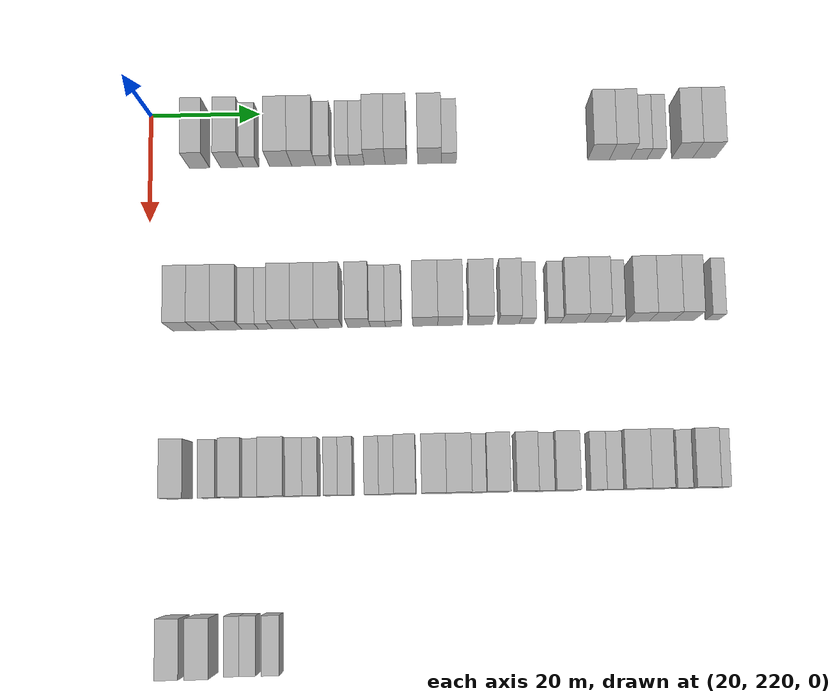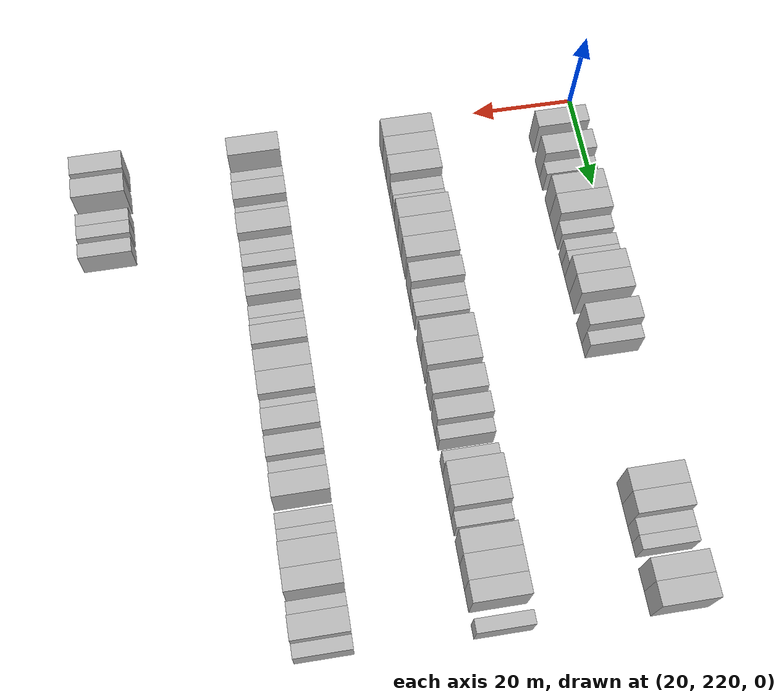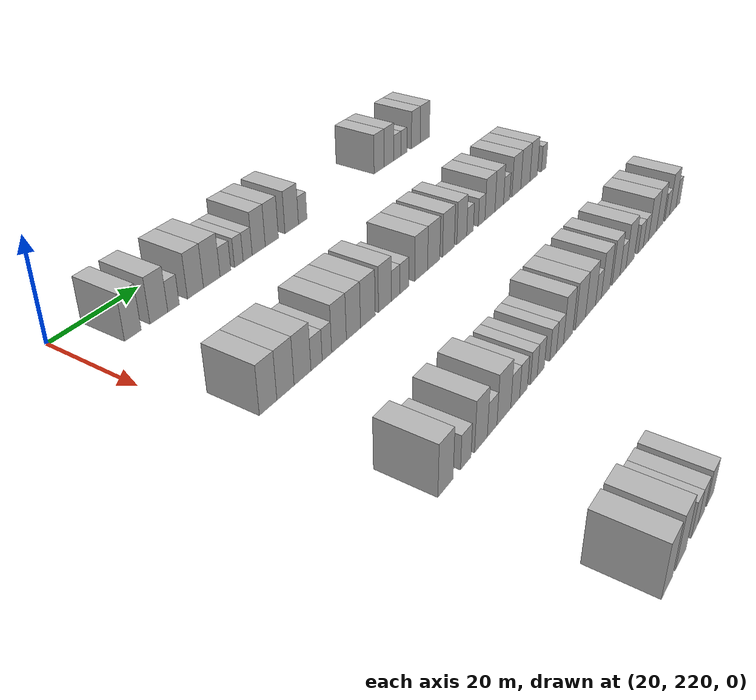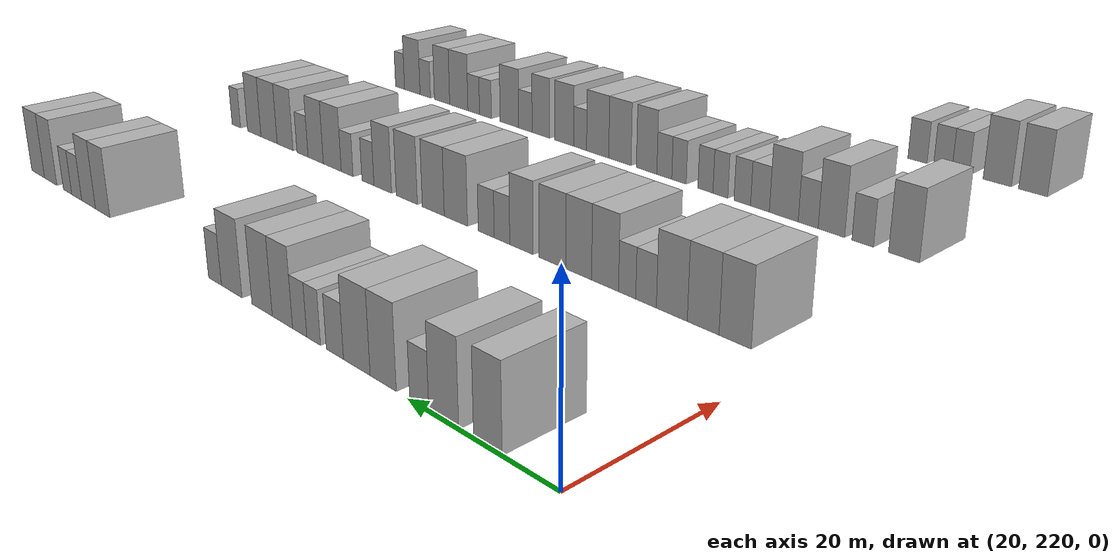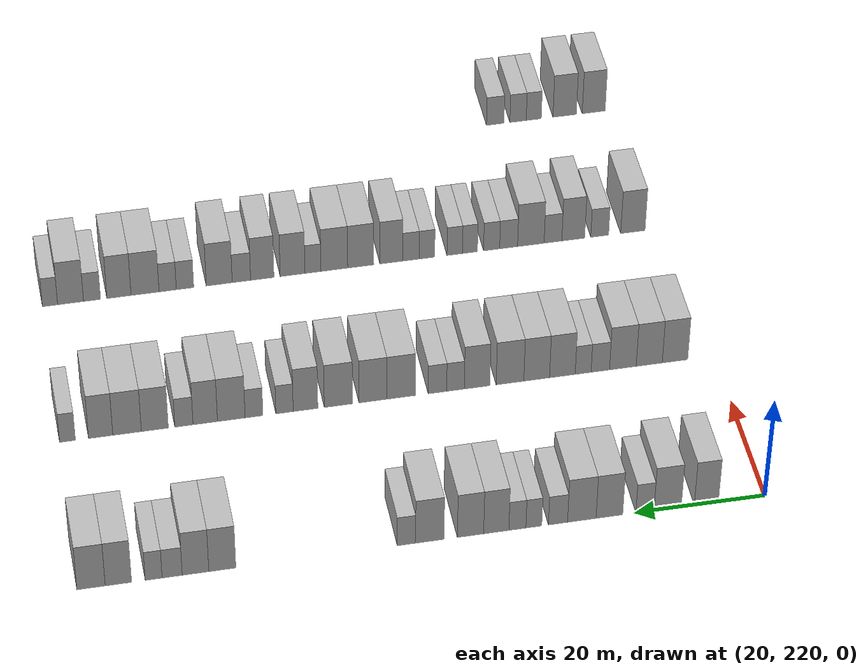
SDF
<sdf version="1.6">
 <world name="default">
  <model name="building_165">
   <static>1</static>
   <pose>25.0000 228.9589 0 0.000000 0.000000 0.000000</pose>
   <link name="link">
    <pose>0 0 4.50 0 0 0</pose>
    <collision name="collision"><geometry><box><size>10.0000 3.6870 9.0000</size></box></geometry></collision>
    <visual name="visual">
     <cast_shadows>0</cast_shadows>
     <geometry><box><size>10.0000 3.6870 9.0000</size></box></geometry>
     <material>
      <script>
       <uri>model://HANNAS_wall/materials/scripts</uri>
       <uri>model://HANNAS_wall/materials/textures</uri>
       <name>vrc/HANNAS_wall</name>
      </script>
     </material>
    </visual>
   </link>
  </model>
  <model name="building_166">
   <static>1</static>
   <pose>25.0000 234.8829 0 0.000000 0.000000 0.000000</pose>
   <link name="link">
    <pose>0 0 4.50 0 0 0</pose>
    <collision name="collision"><geometry><box><size>10.0000 4.1611 9.0000</size></box></geometry></collision>
    <visual name="visual">
     <cast_shadows>0</cast_shadows>
     <geometry><box><size>10.0000 4.1611 9.0000</size></box></geometry>
     <material>
      <script>
       <uri>model://HANNAS_wall/materials/scripts</uri>
       <uri>model://HANNAS_wall/materials/textures</uri>
       <name>vrc/HANNAS_wall</name>
      </script>
     </material>
    </visual>
   </link>
  </model>
  <model name="building_167">
   <static>1</static>
   <pose>25.0000 238.3476 0 0.000000 0.000000 0.000000</pose>
   <link name="link">
    <pose>0 0 3.00 0 0 0</pose>
    <collision name="collision"><geometry><box><size>10.0000 2.7683 6.0000</size></box></geometry></collision>
    <visual name="visual">
     <cast_shadows>0</cast_shadows>
     <geometry><box><size>10.0000 2.7683 6.0000</size></box></geometry>
     <material>
      <script>
       <uri>model://HANNAS_wall/materials/scripts</uri>
       <uri>model://HANNAS_wall/materials/textures</uri>
       <name>vrc/HANNAS_wall</name>
      </script>
     </material>
    </visual>
   </link>
  </model>
  <model name="building_168">
   <static>1</static>
   <pose>25.0000 243.7575 0 0.000000 0.000000 0.000000</pose>
   <link name="link">
    <pose>0 0 4.50 0 0 0</pose>
    <collision name="collision"><geometry><box><size>10.0000 4.0513 9.0000</size></box></geometry></collision>
    <visual name="visual">
     <cast_shadows>0</cast_shadows>
     <geometry><box><size>10.0000 4.0513 9.0000</size></box></geometry>
     <material>
      <script>
       <uri>model://HANNAS_wall/materials/scripts</uri>
       <uri>model://HANNAS_wall/materials/textures</uri>
       <name>vrc/HANNAS_wall</name>
      </script>
     </material>
    </visual>
   </link>
  </model>
  <model name="building_169">
   <static>1</static>
   <pose>25.0000 247.9475 0 0.000000 0.000000 0.000000</pose>
   <link name="link">
    <pose>0 0 4.50 0 0 0</pose>
    <collision name="collision"><geometry><box><size>10.0000 4.3287 9.0000</size></box></geometry></collision>
    <visual name="visual">
     <cast_shadows>0</cast_shadows>
     <geometry><box><size>10.0000 4.3287 9.0000</size></box></geometry>
     <material>
      <script>
       <uri>model://HANNAS_wall/materials/scripts</uri>
       <uri>model://HANNAS_wall/materials/textures</uri>
       <name>vrc/HANNAS_wall</name>
      </script>
     </material>
    </visual>
   </link>
  </model>
  <model name="building_170">
   <static>1</static>
   <pose>25.0000 251.5617 0 0.000000 0.000000 0.000000</pose>
   <link name="link">
    <pose>0 0 3.00 0 0 0</pose>
    <collision name="collision"><geometry><box><size>10.0000 2.8998 6.0000</size></box></geometry></collision>
    <visual name="visual">
     <cast_shadows>0</cast_shadows>
     <geometry><box><size>10.0000 2.8998 6.0000</size></box></geometry>
     <material>
      <script>
       <uri>model://HANNAS_wall/materials/scripts</uri>
       <uri>model://HANNAS_wall/materials/textures</uri>
       <name>vrc/HANNAS_wall</name>
      </script>
     </material>
    </visual>
   </link>
  </model>
  <model name="building_171">
   <static>1</static>
   <pose>25.0000 255.2138 0 0.000000 0.000000 0.000000</pose>
   <link name="link">
    <pose>0 0 3.00 0 0 0</pose>
    <collision name="collision"><geometry><box><size>10.0000 2.4044 6.0000</size></box></geometry></collision>
    <visual name="visual">
     <cast_shadows>0</cast_shadows>
     <geometry><box><size>10.0000 2.4044 6.0000</size></box></geometry>
     <material>
      <script>
       <uri>model://HANNAS_wall/materials/scripts</uri>
       <uri>model://HANNAS_wall/materials/textures</uri>
       <name>vrc/HANNAS_wall</name>
      </script>
     </material>
    </visual>
   </link>
  </model>
  <model name="building_172">
   <static>1</static>
   <pose>25.0000 257.7016 0 0.000000 0.000000 0.000000</pose>
   <link name="link">
    <pose>0 0 3.00 0 0 0</pose>
    <collision name="collision"><geometry><box><size>10.0000 2.5711 6.0000</size></box></geometry></collision>
    <visual name="visual">
     <cast_shadows>0</cast_shadows>
     <geometry><box><size>10.0000 2.5711 6.0000</size></box></geometry>
     <material>
      <script>
       <uri>model://HANNAS_wall/materials/scripts</uri>
       <uri>model://HANNAS_wall/materials/textures</uri>
       <name>vrc/HANNAS_wall</name>
      </script>
     </material>
    </visual>
   </link>
  </model>
  <model name="building_173">
   <static>1</static>
   <pose>25.0000 260.8875 0 0.000000 0.000000 0.000000</pose>
   <link name="link">
    <pose>0 0 4.50 0 0 0</pose>
    <collision name="collision"><geometry><box><size>10.0000 3.8006 9.0000</size></box></geometry></collision>
    <visual name="visual">
     <cast_shadows>0</cast_shadows>
     <geometry><box><size>10.0000 3.8006 9.0000</size></box></geometry>
     <material>
      <script>
       <uri>model://HANNAS_wall/materials/scripts</uri>
       <uri>model://HANNAS_wall/materials/textures</uri>
       <name>vrc/HANNAS_wall</name>
      </script>
     </material>
    </visual>
   </link>
  </model>
  <model name="building_174">
   <static>1</static>
   <pose>25.0000 264.7633 0 0.000000 0.000000 0.000000</pose>
   <link name="link">
    <pose>0 0 4.50 0 0 0</pose>
    <collision name="collision"><geometry><box><size>10.0000 3.9510 9.0000</size></box></geometry></collision>
    <visual name="visual">
     <cast_shadows>0</cast_shadows>
     <geometry><box><size>10.0000 3.9510 9.0000</size></box></geometry>
     <material>
      <script>
       <uri>model://HANNAS_wall/materials/scripts</uri>
       <uri>model://HANNAS_wall/materials/textures</uri>
       <name>vrc/HANNAS_wall</name>
      </script>
     </material>
    </visual>
   </link>
  </model>
  <model name="building_175">
   <static>1</static>
   <pose>25.0000 270.8706 0 0.000000 0.000000 0.000000</pose>
   <link name="link">
    <pose>0 0 4.50 0 0 0</pose>
    <collision name="collision"><geometry><box><size>10.0000 4.2636 9.0000</size></box></geometry></collision>
    <visual name="visual">
     <cast_shadows>0</cast_shadows>
     <geometry><box><size>10.0000 4.2636 9.0000</size></box></geometry>
     <material>
      <script>
       <uri>model://HANNAS_wall/materials/scripts</uri>
       <uri>model://HANNAS_wall/materials/textures</uri>
       <name>vrc/HANNAS_wall</name>
      </script>
     </material>
    </visual>
   </link>
  </model>
  <model name="building_176">
   <static>1</static>
   <pose>25.0000 274.3729 0 0.000000 0.000000 0.000000</pose>
   <link name="link">
    <pose>0 0 3.00 0 0 0</pose>
    <collision name="collision"><geometry><box><size>10.0000 2.7410 6.0000</size></box></geometry></collision>
    <visual name="visual">
     <cast_shadows>0</cast_shadows>
     <geometry><box><size>10.0000 2.7410 6.0000</size></box></geometry>
     <material>
      <script>
       <uri>model://HANNAS_wall/materials/scripts</uri>
       <uri>model://HANNAS_wall/materials/textures</uri>
       <name>vrc/HANNAS_wall</name>
      </script>
     </material>
    </visual>
   </link>
  </model>
  <model name="building_177">
   <static>1</static>
   <pose>25.0000 301.7185 0 0.000000 0.000000 0.000000</pose>
   <link name="link">
    <pose>0 0 4.50 0 0 0</pose>
    <collision name="collision"><geometry><box><size>10.0000 3.9834 9.0000</size></box></geometry></collision>
    <visual name="visual">
     <cast_shadows>0</cast_shadows>
     <geometry><box><size>10.0000 3.9834 9.0000</size></box></geometry>
     <material>
      <script>
       <uri>model://HANNAS_wall/materials/scripts</uri>
       <uri>model://HANNAS_wall/materials/textures</uri>
       <name>vrc/HANNAS_wall</name>
      </script>
     </material>
    </visual>
   </link>
  </model>
  <model name="building_178">
   <static>1</static>
   <pose>25.0000 305.6666 0 0.000000 0.000000 0.000000</pose>
   <link name="link">
    <pose>0 0 4.50 0 0 0</pose>
    <collision name="collision"><geometry><box><size>10.0000 3.9129 9.0000</size></box></geometry></collision>
    <visual name="visual">
     <cast_shadows>0</cast_shadows>
     <geometry><box><size>10.0000 3.9129 9.0000</size></box></geometry>
     <material>
      <script>
       <uri>model://HANNAS_wall/materials/scripts</uri>
       <uri>model://HANNAS_wall/materials/textures</uri>
       <name>vrc/HANNAS_wall</name>
      </script>
     </material>
    </visual>
   </link>
  </model>
  <model name="building_179">
   <static>1</static>
   <pose>25.0000 309.0980 0 0.000000 0.000000 0.000000</pose>
   <link name="link">
    <pose>0 0 3.00 0 0 0</pose>
    <collision name="collision"><geometry><box><size>10.0000 2.9500 6.0000</size></box></geometry></collision>
    <visual name="visual">
     <cast_shadows>0</cast_shadows>
     <geometry><box><size>10.0000 2.9500 6.0000</size></box></geometry>
     <material>
      <script>
       <uri>model://HANNAS_wall/materials/scripts</uri>
       <uri>model://HANNAS_wall/materials/textures</uri>
       <name>vrc/HANNAS_wall</name>
      </script>
     </material>
    </visual>
   </link>
  </model>
  <model name="building_180">
   <static>1</static>
   <pose>25.0000 311.8156 0 0.000000 0.000000 0.000000</pose>
   <link name="link">
    <pose>0 0 3.00 0 0 0</pose>
    <collision name="collision"><geometry><box><size>10.0000 2.4853 6.0000</size></box></geometry></collision>
    <visual name="visual">
     <cast_shadows>0</cast_shadows>
     <geometry><box><size>10.0000 2.4853 6.0000</size></box></geometry>
     <material>
      <script>
       <uri>model://HANNAS_wall/materials/scripts</uri>
       <uri>model://HANNAS_wall/materials/textures</uri>
       <name>vrc/HANNAS_wall</name>
      </script>
     </material>
    </visual>
   </link>
  </model>
  <model name="building_181">
   <static>1</static>
   <pose>25.0000 316.9848 0 0.000000 0.000000 0.000000</pose>
   <link name="link">
    <pose>0 0 4.50 0 0 0</pose>
    <collision name="collision"><geometry><box><size>10.0000 3.8531 9.0000</size></box></geometry></collision>
    <visual name="visual">
     <cast_shadows>0</cast_shadows>
     <geometry><box><size>10.0000 3.8531 9.0000</size></box></geometry>
     <material>
      <script>
       <uri>model://HANNAS_wall/materials/scripts</uri>
       <uri>model://HANNAS_wall/materials/textures</uri>
       <name>vrc/HANNAS_wall</name>
      </script>
     </material>
    </visual>
   </link>
  </model>
  <model name="building_182">
   <static>1</static>
   <pose>25.0000 320.9832 0 0.000000 0.000000 0.000000</pose>
   <link name="link">
    <pose>0 0 4.50 0 0 0</pose>
    <collision name="collision"><geometry><box><size>10.0000 4.1437 9.0000</size></box></geometry></collision>
    <visual name="visual">
     <cast_shadows>0</cast_shadows>
     <geometry><box><size>10.0000 4.1437 9.0000</size></box></geometry>
     <material>
      <script>
       <uri>model://HANNAS_wall/materials/scripts</uri>
       <uri>model://HANNAS_wall/materials/textures</uri>
       <name>vrc/HANNAS_wall</name>
      </script>
     </material>
    </visual>
   </link>
  </model>
  <model name="building_401">
   <static>1</static>
   <pose>55.0000 226.3319 0 0.000000 0.000000 0.000000</pose>
   <link name="link">
    <pose>0 0 4.50 0 0 0</pose>
    <collision name="collision"><geometry><box><size>10.0000 4.0497 9.0000</size></box></geometry></collision>
    <visual name="visual">
     <cast_shadows>0</cast_shadows>
     <geometry><box><size>10.0000 4.0497 9.0000</size></box></geometry>
     <material>
      <script>
       <uri>model://HANNAS_wall/materials/scripts</uri>
       <uri>model://HANNAS_wall/materials/textures</uri>
       <name>vrc/HANNAS_wall</name>
      </script>
     </material>
    </visual>
   </link>
  </model>
  <model name="building_402">
   <static>1</static>
   <pose>55.0000 230.4317 0 0.000000 0.000000 0.000000</pose>
   <link name="link">
    <pose>0 0 4.50 0 0 0</pose>
    <collision name="collision"><geometry><box><size>10.0000 4.1498 9.0000</size></box></geometry></collision>
    <visual name="visual">
     <cast_shadows>0</cast_shadows>
     <geometry><box><size>10.0000 4.1498 9.0000</size></box></geometry>
     <material>
      <script>
       <uri>model://HANNAS_wall/materials/scripts</uri>
       <uri>model://HANNAS_wall/materials/textures</uri>
       <name>vrc/HANNAS_wall</name>
      </script>
     </material>
    </visual>
   </link>
  </model>
  <model name="building_403">
   <static>1</static>
   <pose>55.0000 234.6223 0 0.000000 0.000000 0.000000</pose>
   <link name="link">
    <pose>0 0 4.50 0 0 0</pose>
    <collision name="collision"><geometry><box><size>10.0000 4.2315 9.0000</size></box></geometry></collision>
    <visual name="visual">
     <cast_shadows>0</cast_shadows>
     <geometry><box><size>10.0000 4.2315 9.0000</size></box></geometry>
     <material>
      <script>
       <uri>model://HANNAS_wall/materials/scripts</uri>
       <uri>model://HANNAS_wall/materials/textures</uri>
       <name>vrc/HANNAS_wall</name>
      </script>
     </material>
    </visual>
   </link>
  </model>
  <model name="building_404">
   <static>1</static>
   <pose>55.0000 238.1984 0 0.000000 0.000000 0.000000</pose>
   <link name="link">
    <pose>0 0 3.00 0 0 0</pose>
    <collision name="collision"><geometry><box><size>10.0000 2.9206 6.0000</size></box></geometry></collision>
    <visual name="visual">
     <cast_shadows>0</cast_shadows>
     <geometry><box><size>10.0000 2.9206 6.0000</size></box></geometry>
     <material>
      <script>
       <uri>model://HANNAS_wall/materials/scripts</uri>
       <uri>model://HANNAS_wall/materials/textures</uri>
       <name>vrc/HANNAS_wall</name>
      </script>
     </material>
    </visual>
   </link>
  </model>
  <model name="building_405">
   <static>1</static>
   <pose>55.0000 240.9176 0 0.000000 0.000000 0.000000</pose>
   <link name="link">
    <pose>0 0 3.00 0 0 0</pose>
    <collision name="collision"><geometry><box><size>10.0000 2.5178 6.0000</size></box></geometry></collision>
    <visual name="visual">
     <cast_shadows>0</cast_shadows>
     <geometry><box><size>10.0000 2.5178 6.0000</size></box></geometry>
     <material>
      <script>
       <uri>model://HANNAS_wall/materials/scripts</uri>
       <uri>model://HANNAS_wall/materials/textures</uri>
       <name>vrc/HANNAS_wall</name>
      </script>
     </material>
    </visual>
   </link>
  </model>
  <model name="building_406">
   <static>1</static>
   <pose>55.0000 244.2061 0 0.000000 0.000000 0.000000</pose>
   <link name="link">
    <pose>0 0 4.50 0 0 0</pose>
    <collision name="collision"><geometry><box><size>10.0000 4.0594 9.0000</size></box></geometry></collision>
    <visual name="visual">
     <cast_shadows>0</cast_shadows>
     <geometry><box><size>10.0000 4.0594 9.0000</size></box></geometry>
     <material>
      <script>
       <uri>model://HANNAS_wall/materials/scripts</uri>
       <uri>model://HANNAS_wall/materials/textures</uri>
       <name>vrc/HANNAS_wall</name>
      </script>
     </material>
    </visual>
   </link>
  </model>
  <model name="building_407">
   <static>1</static>
   <pose>55.0000 248.2642 0 0.000000 0.000000 0.000000</pose>
   <link name="link">
    <pose>0 0 4.50 0 0 0</pose>
    <collision name="collision"><geometry><box><size>10.0000 4.0568 9.0000</size></box></geometry></collision>
    <visual name="visual">
     <cast_shadows>0</cast_shadows>
     <geometry><box><size>10.0000 4.0568 9.0000</size></box></geometry>
     <material>
      <script>
       <uri>model://HANNAS_wall/materials/scripts</uri>
       <uri>model://HANNAS_wall/materials/textures</uri>
       <name>vrc/HANNAS_wall</name>
      </script>
     </material>
    </visual>
   </link>
  </model>
  <model name="building_408">
   <static>1</static>
   <pose>55.0000 252.4696 0 0.000000 0.000000 0.000000</pose>
   <link name="link">
    <pose>0 0 4.50 0 0 0</pose>
    <collision name="collision"><geometry><box><size>10.0000 4.3540 9.0000</size></box></geometry></collision>
    <visual name="visual">
     <cast_shadows>0</cast_shadows>
     <geometry><box><size>10.0000 4.3540 9.0000</size></box></geometry>
     <material>
      <script>
       <uri>model://HANNAS_wall/materials/scripts</uri>
       <uri>model://HANNAS_wall/materials/textures</uri>
       <name>vrc/HANNAS_wall</name>
      </script>
     </material>
    </visual>
   </link>
  </model>
  <model name="building_409">
   <static>1</static>
   <pose>55.0000 257.6516 0 0.000000 0.000000 0.000000</pose>
   <link name="link">
    <pose>0 0 4.50 0 0 0</pose>
    <collision name="collision"><geometry><box><size>10.0000 4.0098 9.0000</size></box></geometry></collision>
    <visual name="visual">
     <cast_shadows>0</cast_shadows>
     <geometry><box><size>10.0000 4.0098 9.0000</size></box></geometry>
     <material>
      <script>
       <uri>model://HANNAS_wall/materials/scripts</uri>
       <uri>model://HANNAS_wall/materials/textures</uri>
       <name>vrc/HANNAS_wall</name>
      </script>
     </material>
    </visual>
   </link>
  </model>
  <model name="building_410">
   <static>1</static>
   <pose>55.0000 261.0306 0 0.000000 0.000000 0.000000</pose>
   <link name="link">
    <pose>0 0 3.00 0 0 0</pose>
    <collision name="collision"><geometry><box><size>10.0000 2.7482 6.0000</size></box></geometry></collision>
    <visual name="visual">
     <cast_shadows>0</cast_shadows>
     <geometry><box><size>10.0000 2.7482 6.0000</size></box></geometry>
     <material>
      <script>
       <uri>model://HANNAS_wall/materials/scripts</uri>
       <uri>model://HANNAS_wall/materials/textures</uri>
       <name>vrc/HANNAS_wall</name>
      </script>
     </material>
    </visual>
   </link>
  </model>
  <model name="building_411">
   <static>1</static>
   <pose>55.0000 263.8508 0 0.000000 0.000000 0.000000</pose>
   <link name="link">
    <pose>0 0 3.00 0 0 0</pose>
    <collision name="collision"><geometry><box><size>10.0000 2.8924 6.0000</size></box></geometry></collision>
    <visual name="visual">
     <cast_shadows>0</cast_shadows>
     <geometry><box><size>10.0000 2.8924 6.0000</size></box></geometry>
     <material>
      <script>
       <uri>model://HANNAS_wall/materials/scripts</uri>
       <uri>model://HANNAS_wall/materials/textures</uri>
       <name>vrc/HANNAS_wall</name>
      </script>
     </material>
    </visual>
   </link>
  </model>
  <model name="building_412">
   <static>1</static>
   <pose>55.0000 269.5129 0 0.000000 0.000000 0.000000</pose>
   <link name="link">
    <pose>0 0 4.50 0 0 0</pose>
    <collision name="collision"><geometry><box><size>10.0000 4.4317 9.0000</size></box></geometry></collision>
    <visual name="visual">
     <cast_shadows>0</cast_shadows>
     <geometry><box><size>10.0000 4.4317 9.0000</size></box></geometry>
     <material>
      <script>
       <uri>model://HANNAS_wall/materials/scripts</uri>
       <uri>model://HANNAS_wall/materials/textures</uri>
       <name>vrc/HANNAS_wall</name>
      </script>
     </material>
    </visual>
   </link>
  </model>
  <model name="building_413">
   <static>1</static>
   <pose>55.0000 273.9113 0 0.000000 0.000000 0.000000</pose>
   <link name="link">
    <pose>0 0 4.50 0 0 0</pose>
    <collision name="collision"><geometry><box><size>10.0000 4.3653 9.0000</size></box></geometry></collision>
    <visual name="visual">
     <cast_shadows>0</cast_shadows>
     <geometry><box><size>10.0000 4.3653 9.0000</size></box></geometry>
     <material>
      <script>
       <uri>model://HANNAS_wall/materials/scripts</uri>
       <uri>model://HANNAS_wall/materials/textures</uri>
       <name>vrc/HANNAS_wall</name>
      </script>
     </material>
    </visual>
   </link>
  </model>
  <model name="building_414">
   <static>1</static>
   <pose>55.0000 279.2862 0 0.000000 0.000000 0.000000</pose>
   <link name="link">
    <pose>0 0 4.50 0 0 0</pose>
    <collision name="collision"><geometry><box><size>10.0000 4.3844 9.0000</size></box></geometry></collision>
    <visual name="visual">
     <cast_shadows>0</cast_shadows>
     <geometry><box><size>10.0000 4.3844 9.0000</size></box></geometry>
     <material>
      <script>
       <uri>model://HANNAS_wall/materials/scripts</uri>
       <uri>model://HANNAS_wall/materials/textures</uri>
       <name>vrc/HANNAS_wall</name>
      </script>
     </material>
    </visual>
   </link>
  </model>
  <model name="building_415">
   <static>1</static>
   <pose>55.0000 284.3878 0 0.000000 0.000000 0.000000</pose>
   <link name="link">
    <pose>0 0 4.50 0 0 0</pose>
    <collision name="collision"><geometry><box><size>10.0000 3.8189 9.0000</size></box></geometry></collision>
    <visual name="visual">
     <cast_shadows>0</cast_shadows>
     <geometry><box><size>10.0000 3.8189 9.0000</size></box></geometry>
     <material>
      <script>
       <uri>model://HANNAS_wall/materials/scripts</uri>
       <uri>model://HANNAS_wall/materials/textures</uri>
       <name>vrc/HANNAS_wall</name>
      </script>
     </material>
    </visual>
   </link>
  </model>
  <model name="building_416">
   <static>1</static>
   <pose>55.0000 287.6374 0 0.000000 0.000000 0.000000</pose>
   <link name="link">
    <pose>0 0 3.00 0 0 0</pose>
    <collision name="collision"><geometry><box><size>10.0000 2.6803 6.0000</size></box></geometry></collision>
    <visual name="visual">
     <cast_shadows>0</cast_shadows>
     <geometry><box><size>10.0000 2.6803 6.0000</size></box></geometry>
     <material>
      <script>
       <uri>model://HANNAS_wall/materials/scripts</uri>
       <uri>model://HANNAS_wall/materials/textures</uri>
       <name>vrc/HANNAS_wall</name>
      </script>
     </material>
    </visual>
   </link>
  </model>
  <model name="building_417">
   <static>1</static>
   <pose>55.0000 292.3520 0 0.000000 0.000000 0.000000</pose>
   <link name="link">
    <pose>0 0 3.00 0 0 0</pose>
    <collision name="collision"><geometry><box><size>10.0000 2.7490 6.0000</size></box></geometry></collision>
    <visual name="visual">
     <cast_shadows>0</cast_shadows>
     <geometry><box><size>10.0000 2.7490 6.0000</size></box></geometry>
     <material>
      <script>
       <uri>model://HANNAS_wall/materials/scripts</uri>
       <uri>model://HANNAS_wall/materials/textures</uri>
       <name>vrc/HANNAS_wall</name>
      </script>
     </material>
    </visual>
   </link>
  </model>
  <model name="building_418">
   <static>1</static>
   <pose>55.0000 295.8548 0 0.000000 0.000000 0.000000</pose>
   <link name="link">
    <pose>0 0 4.50 0 0 0</pose>
    <collision name="collision"><geometry><box><size>10.0000 4.2565 9.0000</size></box></geometry></collision>
    <visual name="visual">
     <cast_shadows>0</cast_shadows>
     <geometry><box><size>10.0000 4.2565 9.0000</size></box></geometry>
     <material>
      <script>
       <uri>model://HANNAS_wall/materials/scripts</uri>
       <uri>model://HANNAS_wall/materials/textures</uri>
       <name>vrc/HANNAS_wall</name>
      </script>
     </material>
    </visual>
   </link>
  </model>
  <model name="building_419">
   <static>1</static>
   <pose>55.0000 299.8618 0 0.000000 0.000000 0.000000</pose>
   <link name="link">
    <pose>0 0 4.50 0 0 0</pose>
    <collision name="collision"><geometry><box><size>10.0000 3.7575 9.0000</size></box></geometry></collision>
    <visual name="visual">
     <cast_shadows>0</cast_shadows>
     <geometry><box><size>10.0000 3.7575 9.0000</size></box></geometry>
     <material>
      <script>
       <uri>model://HANNAS_wall/materials/scripts</uri>
       <uri>model://HANNAS_wall/materials/textures</uri>
       <name>vrc/HANNAS_wall</name>
      </script>
     </material>
    </visual>
   </link>
  </model>
  <model name="building_420">
   <static>1</static>
   <pose>55.0000 303.1364 0 0.000000 0.000000 0.000000</pose>
   <link name="link">
    <pose>0 0 3.00 0 0 0</pose>
    <collision name="collision"><geometry><box><size>10.0000 2.7918 6.0000</size></box></geometry></collision>
    <visual name="visual">
     <cast_shadows>0</cast_shadows>
     <geometry><box><size>10.0000 2.7918 6.0000</size></box></geometry>
     <material>
      <script>
       <uri>model://HANNAS_wall/materials/scripts</uri>
       <uri>model://HANNAS_wall/materials/textures</uri>
       <name>vrc/HANNAS_wall</name>
      </script>
     </material>
    </visual>
   </link>
  </model>
  <model name="building_421">
   <static>1</static>
   <pose>55.0000 307.5966 0 0.000000 0.000000 0.000000</pose>
   <link name="link">
    <pose>0 0 4.50 0 0 0</pose>
    <collision name="collision"><geometry><box><size>10.0000 4.1285 9.0000</size></box></geometry></collision>
    <visual name="visual">
     <cast_shadows>0</cast_shadows>
     <geometry><box><size>10.0000 4.1285 9.0000</size></box></geometry>
     <material>
      <script>
       <uri>model://HANNAS_wall/materials/scripts</uri>
       <uri>model://HANNAS_wall/materials/textures</uri>
       <name>vrc/HANNAS_wall</name>
      </script>
     </material>
    </visual>
   </link>
  </model>
  <model name="building_422">
   <static>1</static>
   <pose>55.0000 311.8406 0 0.000000 0.000000 0.000000</pose>
   <link name="link">
    <pose>0 0 4.50 0 0 0</pose>
    <collision name="collision"><geometry><box><size>10.0000 4.3596 9.0000</size></box></geometry></collision>
    <visual name="visual">
     <cast_shadows>0</cast_shadows>
     <geometry><box><size>10.0000 4.3596 9.0000</size></box></geometry>
     <material>
      <script>
       <uri>model://HANNAS_wall/materials/scripts</uri>
       <uri>model://HANNAS_wall/materials/textures</uri>
       <name>vrc/HANNAS_wall</name>
      </script>
     </material>
    </visual>
   </link>
  </model>
  <model name="building_423">
   <static>1</static>
   <pose>55.0000 315.8719 0 0.000000 0.000000 0.000000</pose>
   <link name="link">
    <pose>0 0 4.50 0 0 0</pose>
    <collision name="collision"><geometry><box><size>10.0000 3.7029 9.0000</size></box></geometry></collision>
    <visual name="visual">
     <cast_shadows>0</cast_shadows>
     <geometry><box><size>10.0000 3.7029 9.0000</size></box></geometry>
     <material>
      <script>
       <uri>model://HANNAS_wall/materials/scripts</uri>
       <uri>model://HANNAS_wall/materials/textures</uri>
       <name>vrc/HANNAS_wall</name>
      </script>
     </material>
    </visual>
   </link>
  </model>
  <model name="building_424">
   <static>1</static>
   <pose>55.0000 320.9282 0 0.000000 0.000000 0.000000</pose>
   <link name="link">
    <pose>0 0 3.00 0 0 0</pose>
    <collision name="collision"><geometry><box><size>10.0000 2.4098 6.0000</size></box></geometry></collision>
    <visual name="visual">
     <cast_shadows>0</cast_shadows>
     <geometry><box><size>10.0000 2.4098 6.0000</size></box></geometry>
     <material>
      <script>
       <uri>model://HANNAS_wall/materials/scripts</uri>
       <uri>model://HANNAS_wall/materials/textures</uri>
       <name>vrc/HANNAS_wall</name>
      </script>
     </material>
    </visual>
   </link>
  </model>
  <model name="building_635">
   <static>1</static>
   <pose>85.0000 225.8785 0 0.000000 0.000000 0.000000</pose>
   <link name="link">
    <pose>0 0 4.50 0 0 0</pose>
    <collision name="collision"><geometry><box><size>10.0000 4.0204 9.0000</size></box></geometry></collision>
    <visual name="visual">
     <cast_shadows>0</cast_shadows>
     <geometry><box><size>10.0000 4.0204 9.0000</size></box></geometry>
     <material>
      <script>
       <uri>model://HANNAS_wall/materials/scripts</uri>
       <uri>model://HANNAS_wall/materials/textures</uri>
       <name>vrc/HANNAS_wall</name>
      </script>
     </material>
    </visual>
   </link>
  </model>
  <model name="building_636">
   <static>1</static>
   <pose>85.0000 231.3619 0 0.000000 0.000000 0.000000</pose>
   <link name="link">
    <pose>0 0 3.00 0 0 0</pose>
    <collision name="collision"><geometry><box><size>10.0000 2.9464 6.0000</size></box></geometry></collision>
    <visual name="visual">
     <cast_shadows>0</cast_shadows>
     <geometry><box><size>10.0000 2.9464 6.0000</size></box></geometry>
     <material>
      <script>
       <uri>model://HANNAS_wall/materials/scripts</uri>
       <uri>model://HANNAS_wall/materials/textures</uri>
       <name>vrc/HANNAS_wall</name>
      </script>
     </material>
    </visual>
   </link>
  </model>
  <model name="building_637">
   <static>1</static>
   <pose>85.0000 235.7194 0 0.000000 0.000000 0.000000</pose>
   <link name="link">
    <pose>0 0 4.50 0 0 0</pose>
    <collision name="collision"><geometry><box><size>10.0000 3.7686 9.0000</size></box></geometry></collision>
    <visual name="visual">
     <cast_shadows>0</cast_shadows>
     <geometry><box><size>10.0000 3.7686 9.0000</size></box></geometry>
     <material>
      <script>
       <uri>model://HANNAS_wall/materials/scripts</uri>
       <uri>model://HANNAS_wall/materials/textures</uri>
       <name>vrc/HANNAS_wall</name>
      </script>
     </material>
    </visual>
   </link>
  </model>
  <model name="building_638">
   <static>1</static>
   <pose>85.0000 239.0615 0 0.000000 0.000000 0.000000</pose>
   <link name="link">
    <pose>0 0 3.00 0 0 0</pose>
    <collision name="collision"><geometry><box><size>10.0000 2.9155 6.0000</size></box></geometry></collision>
    <visual name="visual">
     <cast_shadows>0</cast_shadows>
     <geometry><box><size>10.0000 2.9155 6.0000</size></box></geometry>
     <material>
      <script>
       <uri>model://HANNAS_wall/materials/scripts</uri>
       <uri>model://HANNAS_wall/materials/textures</uri>
       <name>vrc/HANNAS_wall</name>
      </script>
     </material>
    </visual>
   </link>
  </model>
  <model name="building_639">
   <static>1</static>
   <pose>85.0000 242.6972 0 0.000000 0.000000 0.000000</pose>
   <link name="link">
    <pose>0 0 4.50 0 0 0</pose>
    <collision name="collision"><geometry><box><size>10.0000 4.3559 9.0000</size></box></geometry></collision>
    <visual name="visual">
     <cast_shadows>0</cast_shadows>
     <geometry><box><size>10.0000 4.3559 9.0000</size></box></geometry>
     <material>
      <script>
       <uri>model://HANNAS_wall/materials/scripts</uri>
       <uri>model://HANNAS_wall/materials/textures</uri>
       <name>vrc/HANNAS_wall</name>
      </script>
     </material>
    </visual>
   </link>
  </model>
  <model name="building_640">
   <static>1</static>
   <pose>85.0000 246.3415 0 0.000000 0.000000 0.000000</pose>
   <link name="link">
    <pose>0 0 3.00 0 0 0</pose>
    <collision name="collision"><geometry><box><size>10.0000 2.9327 6.0000</size></box></geometry></collision>
    <visual name="visual">
     <cast_shadows>0</cast_shadows>
     <geometry><box><size>10.0000 2.9327 6.0000</size></box></geometry>
     <material>
      <script>
       <uri>model://HANNAS_wall/materials/scripts</uri>
       <uri>model://HANNAS_wall/materials/textures</uri>
       <name>vrc/HANNAS_wall</name>
      </script>
     </material>
    </visual>
   </link>
  </model>
  <model name="building_641">
   <static>1</static>
   <pose>85.0000 249.1278 0 0.000000 0.000000 0.000000</pose>
   <link name="link">
    <pose>0 0 3.00 0 0 0</pose>
    <collision name="collision"><geometry><box><size>10.0000 2.6401 6.0000</size></box></geometry></collision>
    <visual name="visual">
     <cast_shadows>0</cast_shadows>
     <geometry><box><size>10.0000 2.6401 6.0000</size></box></geometry>
     <material>
      <script>
       <uri>model://HANNAS_wall/materials/scripts</uri>
       <uri>model://HANNAS_wall/materials/textures</uri>
       <name>vrc/HANNAS_wall</name>
      </script>
     </material>
    </visual>
   </link>
  </model>
  <model name="building_642">
   <static>1</static>
   <pose>85.0000 252.6709 0 0.000000 0.000000 0.000000</pose>
   <link name="link">
    <pose>0 0 3.00 0 0 0</pose>
    <collision name="collision"><geometry><box><size>10.0000 2.4461 6.0000</size></box></geometry></collision>
    <visual name="visual">
     <cast_shadows>0</cast_shadows>
     <geometry><box><size>10.0000 2.4461 6.0000</size></box></geometry>
     <material>
      <script>
       <uri>model://HANNAS_wall/materials/scripts</uri>
       <uri>model://HANNAS_wall/materials/textures</uri>
       <name>vrc/HANNAS_wall</name>
      </script>
     </material>
    </visual>
   </link>
  </model>
  <model name="building_643">
   <static>1</static>
   <pose>85.0000 255.1575 0 0.000000 0.000000 0.000000</pose>
   <link name="link">
    <pose>0 0 3.00 0 0 0</pose>
    <collision name="collision"><geometry><box><size>10.0000 2.5270 6.0000</size></box></geometry></collision>
    <visual name="visual">
     <cast_shadows>0</cast_shadows>
     <geometry><box><size>10.0000 2.5270 6.0000</size></box></geometry>
     <material>
      <script>
       <uri>model://HANNAS_wall/materials/scripts</uri>
       <uri>model://HANNAS_wall/materials/textures</uri>
       <name>vrc/HANNAS_wall</name>
      </script>
     </material>
    </visual>
   </link>
  </model>
  <model name="building_644">
   <static>1</static>
   <pose>85.0000 259.6769 0 0.000000 0.000000 0.000000</pose>
   <link name="link">
    <pose>0 0 3.00 0 0 0</pose>
    <collision name="collision"><geometry><box><size>10.0000 2.5118 6.0000</size></box></geometry></collision>
    <visual name="visual">
     <cast_shadows>0</cast_shadows>
     <geometry><box><size>10.0000 2.5118 6.0000</size></box></geometry>
     <material>
      <script>
       <uri>model://HANNAS_wall/materials/scripts</uri>
       <uri>model://HANNAS_wall/materials/textures</uri>
       <name>vrc/HANNAS_wall</name>
      </script>
     </material>
    </visual>
   </link>
  </model>
  <model name="building_645">
   <static>1</static>
   <pose>85.0000 262.2652 0 0.000000 0.000000 0.000000</pose>
   <link name="link">
    <pose>0 0 3.00 0 0 0</pose>
    <collision name="collision"><geometry><box><size>10.0000 2.6647 6.0000</size></box></geometry></collision>
    <visual name="visual">
     <cast_shadows>0</cast_shadows>
     <geometry><box><size>10.0000 2.6647 6.0000</size></box></geometry>
     <material>
      <script>
       <uri>model://HANNAS_wall/materials/scripts</uri>
       <uri>model://HANNAS_wall/materials/textures</uri>
       <name>vrc/HANNAS_wall</name>
      </script>
     </material>
    </visual>
   </link>
  </model>
  <model name="building_646">
   <static>1</static>
   <pose>85.0000 265.4618 0 0.000000 0.000000 0.000000</pose>
   <link name="link">
    <pose>0 0 4.50 0 0 0</pose>
    <collision name="collision"><geometry><box><size>10.0000 3.7286 9.0000</size></box></geometry></collision>
    <visual name="visual">
     <cast_shadows>0</cast_shadows>
     <geometry><box><size>10.0000 3.7286 9.0000</size></box></geometry>
     <material>
      <script>
       <uri>model://HANNAS_wall/materials/scripts</uri>
       <uri>model://HANNAS_wall/materials/textures</uri>
       <name>vrc/HANNAS_wall</name>
      </script>
     </material>
    </visual>
   </link>
  </model>
  <model name="building_647">
   <static>1</static>
   <pose>85.0000 270.4392 0 0.000000 0.000000 0.000000</pose>
   <link name="link">
    <pose>0 0 4.50 0 0 0</pose>
    <collision name="collision"><geometry><box><size>10.0000 4.2262 9.0000</size></box></geometry></collision>
    <visual name="visual">
     <cast_shadows>0</cast_shadows>
     <geometry><box><size>10.0000 4.2262 9.0000</size></box></geometry>
     <material>
      <script>
       <uri>model://HANNAS_wall/materials/scripts</uri>
       <uri>model://HANNAS_wall/materials/textures</uri>
       <name>vrc/HANNAS_wall</name>
      </script>
     </material>
    </visual>
   </link>
  </model>
  <model name="building_648">
   <static>1</static>
   <pose>85.0000 274.7210 0 0.000000 0.000000 0.000000</pose>
   <link name="link">
    <pose>0 0 4.50 0 0 0</pose>
    <collision name="collision"><geometry><box><size>10.0000 4.3374 9.0000</size></box></geometry></collision>
    <visual name="visual">
     <cast_shadows>0</cast_shadows>
     <geometry><box><size>10.0000 4.3374 9.0000</size></box></geometry>
     <material>
      <script>
       <uri>model://HANNAS_wall/materials/scripts</uri>
       <uri>model://HANNAS_wall/materials/textures</uri>
       <name>vrc/HANNAS_wall</name>
      </script>
     </material>
    </visual>
   </link>
  </model>
  <model name="building_649">
   <static>1</static>
   <pose>85.0000 278.1732 0 0.000000 0.000000 0.000000</pose>
   <link name="link">
    <pose>0 0 3.00 0 0 0</pose>
    <collision name="collision"><geometry><box><size>10.0000 2.5669 6.0000</size></box></geometry></collision>
    <visual name="visual">
     <cast_shadows>0</cast_shadows>
     <geometry><box><size>10.0000 2.5669 6.0000</size></box></geometry>
     <material>
      <script>
       <uri>model://HANNAS_wall/materials/scripts</uri>
       <uri>model://HANNAS_wall/materials/textures</uri>
       <name>vrc/HANNAS_wall</name>
      </script>
     </material>
    </visual>
   </link>
  </model>
  <model name="building_650">
   <static>1</static>
   <pose>85.0000 281.4570 0 0.000000 0.000000 0.000000</pose>
   <link name="link">
    <pose>0 0 4.50 0 0 0</pose>
    <collision name="collision"><geometry><box><size>10.0000 4.0008 9.0000</size></box></geometry></collision>
    <visual name="visual">
     <cast_shadows>0</cast_shadows>
     <geometry><box><size>10.0000 4.0008 9.0000</size></box></geometry>
     <material>
      <script>
       <uri>model://HANNAS_wall/materials/scripts</uri>
       <uri>model://HANNAS_wall/materials/textures</uri>
       <name>vrc/HANNAS_wall</name>
      </script>
     </material>
    </visual>
   </link>
  </model>
  <model name="building_651">
   <static>1</static>
   <pose>85.0000 286.3367 0 0.000000 0.000000 0.000000</pose>
   <link name="link">
    <pose>0 0 4.50 0 0 0</pose>
    <collision name="collision"><geometry><box><size>10.0000 3.7586 9.0000</size></box></geometry></collision>
    <visual name="visual">
     <cast_shadows>0</cast_shadows>
     <geometry><box><size>10.0000 3.7586 9.0000</size></box></geometry>
     <material>
      <script>
       <uri>model://HANNAS_wall/materials/scripts</uri>
       <uri>model://HANNAS_wall/materials/textures</uri>
       <name>vrc/HANNAS_wall</name>
      </script>
     </material>
    </visual>
   </link>
  </model>
  <model name="building_652">
   <static>1</static>
   <pose>85.0000 289.6931 0 0.000000 0.000000 0.000000</pose>
   <link name="link">
    <pose>0 0 3.00 0 0 0</pose>
    <collision name="collision"><geometry><box><size>10.0000 2.9542 6.0000</size></box></geometry></collision>
    <visual name="visual">
     <cast_shadows>0</cast_shadows>
     <geometry><box><size>10.0000 2.9542 6.0000</size></box></geometry>
     <material>
      <script>
       <uri>model://HANNAS_wall/materials/scripts</uri>
       <uri>model://HANNAS_wall/materials/textures</uri>
       <name>vrc/HANNAS_wall</name>
      </script>
     </material>
    </visual>
   </link>
  </model>
  <model name="building_653">
   <static>1</static>
   <pose>85.0000 293.2513 0 0.000000 0.000000 0.000000</pose>
   <link name="link">
    <pose>0 0 4.50 0 0 0</pose>
    <collision name="collision"><geometry><box><size>10.0000 4.1622 9.0000</size></box></geometry></collision>
    <visual name="visual">
     <cast_shadows>0</cast_shadows>
     <geometry><box><size>10.0000 4.1622 9.0000</size></box></geometry>
     <material>
      <script>
       <uri>model://HANNAS_wall/materials/scripts</uri>
       <uri>model://HANNAS_wall/materials/textures</uri>
       <name>vrc/HANNAS_wall</name>
      </script>
     </material>
    </visual>
   </link>
  </model>
  <model name="building_654">
   <static>1</static>
   <pose>85.0000 298.7258 0 0.000000 0.000000 0.000000</pose>
   <link name="link">
    <pose>0 0 3.00 0 0 0</pose>
    <collision name="collision"><geometry><box><size>10.0000 2.7869 6.0000</size></box></geometry></collision>
    <visual name="visual">
     <cast_shadows>0</cast_shadows>
     <geometry><box><size>10.0000 2.7869 6.0000</size></box></geometry>
     <material>
      <script>
       <uri>model://HANNAS_wall/materials/scripts</uri>
       <uri>model://HANNAS_wall/materials/textures</uri>
       <name>vrc/HANNAS_wall</name>
      </script>
     </material>
    </visual>
   </link>
  </model>
  <model name="building_655">
   <static>1</static>
   <pose>85.0000 301.4985 0 0.000000 0.000000 0.000000</pose>
   <link name="link">
    <pose>0 0 3.00 0 0 0</pose>
    <collision name="collision"><geometry><box><size>10.0000 2.7584 6.0000</size></box></geometry></collision>
    <visual name="visual">
     <cast_shadows>0</cast_shadows>
     <geometry><box><size>10.0000 2.7584 6.0000</size></box></geometry>
     <material>
      <script>
       <uri>model://HANNAS_wall/materials/scripts</uri>
       <uri>model://HANNAS_wall/materials/textures</uri>
       <name>vrc/HANNAS_wall</name>
      </script>
     </material>
    </visual>
   </link>
  </model>
  <model name="building_656">
   <static>1</static>
   <pose>85.0000 305.1079 0 0.000000 0.000000 0.000000</pose>
   <link name="link">
    <pose>0 0 4.50 0 0 0</pose>
    <collision name="collision"><geometry><box><size>10.0000 4.4605 9.0000</size></box></geometry></collision>
    <visual name="visual">
     <cast_shadows>0</cast_shadows>
     <geometry><box><size>10.0000 4.4605 9.0000</size></box></geometry>
     <material>
      <script>
       <uri>model://HANNAS_wall/materials/scripts</uri>
       <uri>model://HANNAS_wall/materials/textures</uri>
       <name>vrc/HANNAS_wall</name>
      </script>
     </material>
    </visual>
   </link>
  </model>
  <model name="building_657">
   <static>1</static>
   <pose>85.0000 309.2621 0 0.000000 0.000000 0.000000</pose>
   <link name="link">
    <pose>0 0 4.50 0 0 0</pose>
    <collision name="collision"><geometry><box><size>10.0000 3.8479 9.0000</size></box></geometry></collision>
    <visual name="visual">
     <cast_shadows>0</cast_shadows>
     <geometry><box><size>10.0000 3.8479 9.0000</size></box></geometry>
     <material>
      <script>
       <uri>model://HANNAS_wall/materials/scripts</uri>
       <uri>model://HANNAS_wall/materials/textures</uri>
       <name>vrc/HANNAS_wall</name>
      </script>
     </material>
    </visual>
   </link>
  </model>
  <model name="building_658">
   <static>1</static>
   <pose>85.0000 313.5381 0 0.000000 0.000000 0.000000</pose>
   <link name="link">
    <pose>0 0 3.00 0 0 0</pose>
    <collision name="collision"><geometry><box><size>10.0000 2.7040 6.0000</size></box></geometry></collision>
    <visual name="visual">
     <cast_shadows>0</cast_shadows>
     <geometry><box><size>10.0000 2.7040 6.0000</size></box></geometry>
     <material>
      <script>
       <uri>model://HANNAS_wall/materials/scripts</uri>
       <uri>model://HANNAS_wall/materials/textures</uri>
       <name>vrc/HANNAS_wall</name>
      </script>
     </material>
    </visual>
   </link>
  </model>
  <model name="building_659">
   <static>1</static>
   <pose>85.0000 316.9420 0 0.000000 0.000000 0.000000</pose>
   <link name="link">
    <pose>0 0 4.50 0 0 0</pose>
    <collision name="collision"><geometry><box><size>10.0000 4.1039 9.0000</size></box></geometry></collision>
    <visual name="visual">
     <cast_shadows>0</cast_shadows>
     <geometry><box><size>10.0000 4.1039 9.0000</size></box></geometry>
     <material>
      <script>
       <uri>model://HANNAS_wall/materials/scripts</uri>
       <uri>model://HANNAS_wall/materials/textures</uri>
       <name>vrc/HANNAS_wall</name>
      </script>
     </material>
    </visual>
   </link>
  </model>
  <model name="building_660">
   <static>1</static>
   <pose>85.0000 320.2024 0 0.000000 0.000000 0.000000</pose>
   <link name="link">
    <pose>0 0 3.00 0 0 0</pose>
    <collision name="collision"><geometry><box><size>10.0000 2.4170 6.0000</size></box></geometry></collision>
    <visual name="visual">
     <cast_shadows>0</cast_shadows>
     <geometry><box><size>10.0000 2.4170 6.0000</size></box></geometry>
     <material>
      <script>
       <uri>model://HANNAS_wall/materials/scripts</uri>
       <uri>model://HANNAS_wall/materials/textures</uri>
       <name>vrc/HANNAS_wall</name>
      </script>
     </material>
    </visual>
   </link>
  </model>
  <model name="building_863">
   <static>1</static>
   <pose>115.0000 225.4571 0 0.000000 0.000000 0.000000</pose>
   <link name="link">
    <pose>0 0 4.50 0 0 0</pose>
    <collision name="collision"><geometry><box><size>10.0000 3.9318 9.0000</size></box></geometry></collision>
    <visual name="visual">
     <cast_shadows>0</cast_shadows>
     <geometry><box><size>10.0000 3.9318 9.0000</size></box></geometry>
     <material>
      <script>
       <uri>model://HANNAS_wall/materials/scripts</uri>
       <uri>model://HANNAS_wall/materials/textures</uri>
       <name>vrc/HANNAS_wall</name>
      </script>
     </material>
    </visual>
   </link>
  </model>
  <model name="building_864">
   <static>1</static>
   <pose>115.0000 230.4278 0 0.000000 0.000000 0.000000</pose>
   <link name="link">
    <pose>0 0 4.50 0 0 0</pose>
    <collision name="collision"><geometry><box><size>10.0000 4.0096 9.0000</size></box></geometry></collision>
    <visual name="visual">
     <cast_shadows>0</cast_shadows>
     <geometry><box><size>10.0000 4.0096 9.0000</size></box></geometry>
     <material>
      <script>
       <uri>model://HANNAS_wall/materials/scripts</uri>
       <uri>model://HANNAS_wall/materials/textures</uri>
       <name>vrc/HANNAS_wall</name>
      </script>
     </material>
    </visual>
   </link>
  </model>
  <model name="building_865">
   <static>1</static>
   <pose>115.0000 235.7193 0 0.000000 0.000000 0.000000</pose>
   <link name="link">
    <pose>0 0 3.00 0 0 0</pose>
    <collision name="collision"><geometry><box><size>10.0000 2.5733 6.0000</size></box></geometry></collision>
    <visual name="visual">
     <cast_shadows>0</cast_shadows>
     <geometry><box><size>10.0000 2.5733 6.0000</size></box></geometry>
     <material>
      <script>
       <uri>model://HANNAS_wall/materials/scripts</uri>
       <uri>model://HANNAS_wall/materials/textures</uri>
       <name>vrc/HANNAS_wall</name>
      </script>
     </material>
    </visual>
   </link>
  </model>
  <model name="building_866">
   <static>1</static>
   <pose>115.0000 238.4006 0 0.000000 0.000000 0.000000</pose>
   <link name="link">
    <pose>0 0 3.00 0 0 0</pose>
    <collision name="collision"><geometry><box><size>10.0000 2.7893 6.0000</size></box></geometry></collision>
    <visual name="visual">
     <cast_shadows>0</cast_shadows>
     <geometry><box><size>10.0000 2.7893 6.0000</size></box></geometry>
     <material>
      <script>
       <uri>model://HANNAS_wall/materials/scripts</uri>
       <uri>model://HANNAS_wall/materials/textures</uri>
       <name>vrc/HANNAS_wall</name>
      </script>
     </material>
    </visual>
   </link>
  </model>
  <model name="building_867">
   <static>1</static>
   <pose>115.0000 242.2874 0 0.000000 0.000000 0.000000</pose>
   <link name="link">
    <pose>0 0 3.00 0 0 0</pose>
    <collision name="collision"><geometry><box><size>10.0000 2.9842 6.0000</size></box></geometry></collision>
    <visual name="visual">
     <cast_shadows>0</cast_shadows>
     <geometry><box><size>10.0000 2.9842 6.0000</size></box></geometry>
     <material>
      <script>
       <uri>model://HANNAS_wall/materials/scripts</uri>
       <uri>model://HANNAS_wall/materials/textures</uri>
       <name>vrc/HANNAS_wall</name>
      </script>
     </material>
    </visual>
   </link>
  </model>
 </world>
</sdf>
